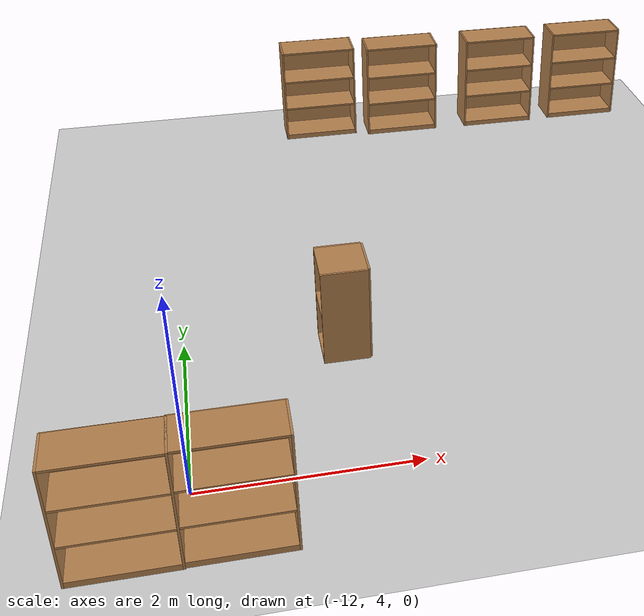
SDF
<sdf version="1.7">
 <world name="default">
  <model name="ground_plane">
   <static>1</static>
   <link name="link">
    <collision name="collision">
     <geometry><plane><normal>0 0 1</normal><size>100 100</size></plane></geometry>
     <surface>
      <contact><collide_bitmask>65535</collide_bitmask></contact>
      <friction><ode><mu>100</mu><mu2>50</mu2></ode></friction>
     </surface>
    </collision>
    <visual name="visual">
     <cast_shadows>0</cast_shadows>
     <geometry><plane><normal>0 0 1</normal><size>100 100</size></plane></geometry>
     <material>
      <script><uri>file://media/materials/scripts/gazebo.material</uri><name>Gazebo/Grey</name></script>
     </material>
    </visual>
   </link>
  </model>
  <model name="bookshelf">
   <static>1</static>
   <link name="link">
    <inertial><mass>1</mass></inertial>
    <collision name="back">
     <pose>0 0.005 0.6 0 -0 0</pose>
     <geometry><box><size>0.9 0.01 1.2</size></box></geometry>
    </collision>
    <visual name="visual1">
     <pose>0 0.005 0.6 0 -0 0</pose>
     <geometry><box><size>0.9 0.01 1.2</size></box></geometry>
     <material>
      <script><uri>file://media/materials/scripts/gazebo.material</uri><name>Gazebo/Wood</name></script>
     </material>
    </visual>
    <collision name="left_side">
     <pose>0.45 -0.195 0.6 0 -0 0</pose>
     <geometry><box><size>0.02 0.4 1.2</size></box></geometry>
    </collision>
    <visual name="visual2">
     <pose>0.45 -0.195 0.6 0 -0 0</pose>
     <geometry><box><size>0.02 0.4 1.2</size></box></geometry>
     <material>
      <script><uri>file://media/materials/scripts/gazebo.material</uri><name>Gazebo/Wood</name></script>
     </material>
    </visual>
    <collision name="right_side">
     <pose>-0.45 -0.195 0.6 0 -0 0</pose>
     <geometry><box><size>0.02 0.4 1.2</size></box></geometry>
    </collision>
    <visual name="visual3">
     <pose>-0.45 -0.195 0.6 0 -0 0</pose>
     <geometry><box><size>0.02 0.4 1.2</size></box></geometry>
     <material>
      <script><uri>file://media/materials/scripts/gazebo.material</uri><name>Gazebo/Wood</name></script>
     </material>
    </visual>
    <collision name="bottom">
     <pose>0 -0.195 0.03 0 -0 0</pose>
     <geometry><box><size>0.88 0.4 0.06</size></box></geometry>
    </collision>
    <visual name="visual4">
     <pose>0 -0.195 0.03 0 -0 0</pose>
     <geometry><box><size>0.88 0.4 0.06</size></box></geometry>
     <material>
      <script><uri>file://media/materials/scripts/gazebo.material</uri><name>Gazebo/Wood</name></script>
     </material>
    </visual>
    <collision name="top">
     <pose>0 -0.195 1.19 0 -0 0</pose>
     <geometry><box><size>0.88 0.4 0.02</size></box></geometry>
    </collision>
    <visual name="visual5">
     <pose>0 -0.195 1.19 0 -0 0</pose>
     <geometry><box><size>0.88 0.4 0.02</size></box></geometry>
     <material>
      <script><uri>file://media/materials/scripts/gazebo.material</uri><name>Gazebo/Wood</name></script>
     </material>
    </visual>
    <collision name="low_shelf">
     <pose>0 -0.195 0.43 0 -0 0</pose>
     <geometry><box><size>0.88 0.4 0.02</size></box></geometry>
    </collision>
    <visual name="visual6">
     <pose>0 -0.195 0.43 0 -0 0</pose>
     <geometry><box><size>0.88 0.4 0.02</size></box></geometry>
     <material>
      <script><uri>file://media/materials/scripts/gazebo.material</uri><name>Gazebo/Wood</name></script>
     </material>
    </visual>
    <collision name="high_shelf">
     <pose>0 -0.195 0.8 0 -0 0</pose>
     <geometry><box><size>0.88 0.4 0.02</size></box></geometry>
    </collision>
    <visual name="visual7">
     <pose>0 -0.195 0.8 0 -0 0</pose>
     <geometry><box><size>0.88 0.4 0.02</size></box></geometry>
     <material>
      <script><uri>file://media/materials/scripts/gazebo.material</uri><name>Gazebo/Wood</name></script>
     </material>
    </visual>
   </link>
   <pose>-10.0788 10.5753 0 0 -0 0</pose>
  </model>
  <model name="bookshelf_0">
   <static>1</static>
   <link name="link">
    <inertial><mass>1</mass></inertial>
    <collision name="back">
     <pose>0 0.005 0.6 0 -0 0</pose>
     <geometry><box><size>0.9 0.01 1.2</size></box></geometry>
    </collision>
    <visual name="visual1">
     <pose>0 0.005 0.6 0 -0 0</pose>
     <geometry><box><size>0.9 0.01 1.2</size></box></geometry>
     <material>
      <script><uri>file://media/materials/scripts/gazebo.material</uri><name>Gazebo/Wood</name></script>
     </material>
    </visual>
    <collision name="left_side">
     <pose>0.45 -0.195 0.6 0 -0 0</pose>
     <geometry><box><size>0.02 0.4 1.2</size></box></geometry>
    </collision>
    <visual name="visual2">
     <pose>0.45 -0.195 0.6 0 -0 0</pose>
     <geometry><box><size>0.02 0.4 1.2</size></box></geometry>
     <material>
      <script><uri>file://media/materials/scripts/gazebo.material</uri><name>Gazebo/Wood</name></script>
     </material>
    </visual>
    <collision name="right_side">
     <pose>-0.45 -0.195 0.6 0 -0 0</pose>
     <geometry><box><size>0.02 0.4 1.2</size></box></geometry>
    </collision>
    <visual name="visual3">
     <pose>-0.45 -0.195 0.6 0 -0 0</pose>
     <geometry><box><size>0.02 0.4 1.2</size></box></geometry>
     <material>
      <script><uri>file://media/materials/scripts/gazebo.material</uri><name>Gazebo/Wood</name></script>
     </material>
    </visual>
    <collision name="bottom">
     <pose>0 -0.195 0.03 0 -0 0</pose>
     <geometry><box><size>0.88 0.4 0.06</size></box></geometry>
    </collision>
    <visual name="visual4">
     <pose>0 -0.195 0.03 0 -0 0</pose>
     <geometry><box><size>0.88 0.4 0.06</size></box></geometry>
     <material>
      <script><uri>file://media/materials/scripts/gazebo.material</uri><name>Gazebo/Wood</name></script>
     </material>
    </visual>
    <collision name="top">
     <pose>0 -0.195 1.19 0 -0 0</pose>
     <geometry><box><size>0.88 0.4 0.02</size></box></geometry>
    </collision>
    <visual name="visual5">
     <pose>0 -0.195 1.19 0 -0 0</pose>
     <geometry><box><size>0.88 0.4 0.02</size></box></geometry>
     <material>
      <script><uri>file://media/materials/scripts/gazebo.material</uri><name>Gazebo/Wood</name></script>
     </material>
    </visual>
    <collision name="low_shelf">
     <pose>0 -0.195 0.43 0 -0 0</pose>
     <geometry><box><size>0.88 0.4 0.02</size></box></geometry>
    </collision>
    <visual name="visual6">
     <pose>0 -0.195 0.43 0 -0 0</pose>
     <geometry><box><size>0.88 0.4 0.02</size></box></geometry>
     <material>
      <script><uri>file://media/materials/scripts/gazebo.material</uri><name>Gazebo/Wood</name></script>
     </material>
    </visual>
    <collision name="high_shelf">
     <pose>0 -0.195 0.8 0 -0 0</pose>
     <geometry><box><size>0.88 0.4 0.02</size></box></geometry>
    </collision>
    <visual name="visual7">
     <pose>0 -0.195 0.8 0 -0 0</pose>
     <geometry><box><size>0.88 0.4 0.02</size></box></geometry>
     <material>
      <script><uri>file://media/materials/scripts/gazebo.material</uri><name>Gazebo/Wood</name></script>
     </material>
    </visual>
   </link>
   <pose>-9.01072 10.5031 0 0 -0 0</pose>
  </model>
  <model name="bookshelf_1">
   <static>1</static>
   <link name="link">
    <inertial><mass>1</mass></inertial>
    <collision name="back">
     <pose>0 0.005 0.6 0 -0 0</pose>
     <geometry><box><size>0.9 0.01 1.2</size></box></geometry>
    </collision>
    <visual name="visual1">
     <pose>0 0.005 0.6 0 -0 0</pose>
     <geometry><box><size>0.9 0.01 1.2</size></box></geometry>
     <material>
      <script><uri>file://media/materials/scripts/gazebo.material</uri><name>Gazebo/Wood</name></script>
     </material>
    </visual>
    <collision name="left_side">
     <pose>0.45 -0.195 0.6 0 -0 0</pose>
     <geometry><box><size>0.02 0.4 1.2</size></box></geometry>
    </collision>
    <visual name="visual2">
     <pose>0.45 -0.195 0.6 0 -0 0</pose>
     <geometry><box><size>0.02 0.4 1.2</size></box></geometry>
     <material>
      <script><uri>file://media/materials/scripts/gazebo.material</uri><name>Gazebo/Wood</name></script>
     </material>
    </visual>
    <collision name="right_side">
     <pose>-0.45 -0.195 0.6 0 -0 0</pose>
     <geometry><box><size>0.02 0.4 1.2</size></box></geometry>
    </collision>
    <visual name="visual3">
     <pose>-0.45 -0.195 0.6 0 -0 0</pose>
     <geometry><box><size>0.02 0.4 1.2</size></box></geometry>
     <material>
      <script><uri>file://media/materials/scripts/gazebo.material</uri><name>Gazebo/Wood</name></script>
     </material>
    </visual>
    <collision name="bottom">
     <pose>0 -0.195 0.03 0 -0 0</pose>
     <geometry><box><size>0.88 0.4 0.06</size></box></geometry>
    </collision>
    <visual name="visual4">
     <pose>0 -0.195 0.03 0 -0 0</pose>
     <geometry><box><size>0.88 0.4 0.06</size></box></geometry>
     <material>
      <script><uri>file://media/materials/scripts/gazebo.material</uri><name>Gazebo/Wood</name></script>
     </material>
    </visual>
    <collision name="top">
     <pose>0 -0.195 1.19 0 -0 0</pose>
     <geometry><box><size>0.88 0.4 0.02</size></box></geometry>
    </collision>
    <visual name="visual5">
     <pose>0 -0.195 1.19 0 -0 0</pose>
     <geometry><box><size>0.88 0.4 0.02</size></box></geometry>
     <material>
      <script><uri>file://media/materials/scripts/gazebo.material</uri><name>Gazebo/Wood</name></script>
     </material>
    </visual>
    <collision name="low_shelf">
     <pose>0 -0.195 0.43 0 -0 0</pose>
     <geometry><box><size>0.88 0.4 0.02</size></box></geometry>
    </collision>
    <visual name="visual6">
     <pose>0 -0.195 0.43 0 -0 0</pose>
     <geometry><box><size>0.88 0.4 0.02</size></box></geometry>
     <material>
      <script><uri>file://media/materials/scripts/gazebo.material</uri><name>Gazebo/Wood</name></script>
     </material>
    </visual>
    <collision name="high_shelf">
     <pose>0 -0.195 0.8 0 -0 0</pose>
     <geometry><box><size>0.88 0.4 0.02</size></box></geometry>
    </collision>
    <visual name="visual7">
     <pose>0 -0.195 0.8 0 -0 0</pose>
     <geometry><box><size>0.88 0.4 0.02</size></box></geometry>
     <material>
      <script><uri>file://media/materials/scripts/gazebo.material</uri><name>Gazebo/Wood</name></script>
     </material>
    </visual>
   </link>
   <pose>-7.70566 10.4883 0 0 -0 0</pose>
  </model>
  <model name="bookshelf_2">
   <static>1</static>
   <link name="link">
    <inertial><mass>1</mass></inertial>
    <collision name="back">
     <pose>0 0.005 0.6 0 -0 0</pose>
     <geometry><box><size>0.9 0.01 1.2</size></box></geometry>
    </collision>
    <visual name="visual1">
     <pose>0 0.005 0.6 0 -0 0</pose>
     <geometry><box><size>0.9 0.01 1.2</size></box></geometry>
     <material>
      <script><uri>file://media/materials/scripts/gazebo.material</uri><name>Gazebo/Wood</name></script>
     </material>
    </visual>
    <collision name="left_side">
     <pose>0.45 -0.195 0.6 0 -0 0</pose>
     <geometry><box><size>0.02 0.4 1.2</size></box></geometry>
    </collision>
    <visual name="visual2">
     <pose>0.45 -0.195 0.6 0 -0 0</pose>
     <geometry><box><size>0.02 0.4 1.2</size></box></geometry>
     <material>
      <script><uri>file://media/materials/scripts/gazebo.material</uri><name>Gazebo/Wood</name></script>
     </material>
    </visual>
    <collision name="right_side">
     <pose>-0.45 -0.195 0.6 0 -0 0</pose>
     <geometry><box><size>0.02 0.4 1.2</size></box></geometry>
    </collision>
    <visual name="visual3">
     <pose>-0.45 -0.195 0.6 0 -0 0</pose>
     <geometry><box><size>0.02 0.4 1.2</size></box></geometry>
     <material>
      <script><uri>file://media/materials/scripts/gazebo.material</uri><name>Gazebo/Wood</name></script>
     </material>
    </visual>
    <collision name="bottom">
     <pose>0 -0.195 0.03 0 -0 0</pose>
     <geometry><box><size>0.88 0.4 0.06</size></box></geometry>
    </collision>
    <visual name="visual4">
     <pose>0 -0.195 0.03 0 -0 0</pose>
     <geometry><box><size>0.88 0.4 0.06</size></box></geometry>
     <material>
      <script><uri>file://media/materials/scripts/gazebo.material</uri><name>Gazebo/Wood</name></script>
     </material>
    </visual>
    <collision name="top">
     <pose>0 -0.195 1.19 0 -0 0</pose>
     <geometry><box><size>0.88 0.4 0.02</size></box></geometry>
    </collision>
    <visual name="visual5">
     <pose>0 -0.195 1.19 0 -0 0</pose>
     <geometry><box><size>0.88 0.4 0.02</size></box></geometry>
     <material>
      <script><uri>file://media/materials/scripts/gazebo.material</uri><name>Gazebo/Wood</name></script>
     </material>
    </visual>
    <collision name="low_shelf">
     <pose>0 -0.195 0.43 0 -0 0</pose>
     <geometry><box><size>0.88 0.4 0.02</size></box></geometry>
    </collision>
    <visual name="visual6">
     <pose>0 -0.195 0.43 0 -0 0</pose>
     <geometry><box><size>0.88 0.4 0.02</size></box></geometry>
     <material>
      <script><uri>file://media/materials/scripts/gazebo.material</uri><name>Gazebo/Wood</name></script>
     </material>
    </visual>
    <collision name="high_shelf">
     <pose>0 -0.195 0.8 0 -0 0</pose>
     <geometry><box><size>0.88 0.4 0.02</size></box></geometry>
    </collision>
    <visual name="visual7">
     <pose>0 -0.195 0.8 0 -0 0</pose>
     <geometry><box><size>0.88 0.4 0.02</size></box></geometry>
     <material>
      <script><uri>file://media/materials/scripts/gazebo.material</uri><name>Gazebo/Wood</name></script>
     </material>
    </visual>
   </link>
   <pose>-6.53518 10.5005 0 0 -0 0</pose>
  </model>
  <model name="cabinet">
   <static>1</static>
   <link name="cabinet_bottom_plate">
    <inertial>
     <pose>0 0 -1 0 -0 0</pose>
     <inertia><ixx>2.05</ixx><ixy>0</ixy><ixz>0</ixz><iyy>2.05</iyy><iyz>0</iyz><izz>2.05</izz></inertia>
     <mass>25</mass>
    </inertial>
    <collision name="cabinet_bottom_plate_geom">
     <pose>0 0 0.01 0 -0 0</pose>
     <geometry><box><size>0.45 0.45 0.02</size></box></geometry>
    </collision>
    <visual name="cabinet_bottom_plate_geom_visual">
     <pose>0 0 0.01 0 -0 0</pose>
     <geometry><box><size>0.45 0.45 0.02</size></box></geometry>
     <material>
      <script><uri>file://media/materials/scripts/gazebo.material</uri><name>Gazebo/Wood</name></script>
     </material>
    </visual>
    <collision name="cabinet_bottom_plate_geom_cabinet_back_plate">
     <pose>0.235 0 0.51 0 -0 0</pose>
     <geometry><box><size>0.02 0.45 1.02</size></box></geometry>
    </collision>
    <visual name="cabinet_bottom_plate_geom_cabinet_back_plate_visual">
     <pose>0.235 0 0.51 0 -0 0</pose>
     <geometry><box><size>0.02 0.45 1.02</size></box></geometry>
     <material>
      <script><uri>file://media/materials/scripts/gazebo.material</uri><name>Gazebo/Wood</name></script>
     </material>
    </visual>
    <collision name="cabinet_bottom_plate_geom_cabinet_left_plate">
     <pose>0 0.235 0.51 0 -0 0</pose>
     <geometry><box><size>0.45 0.02 1.02</size></box></geometry>
    </collision>
    <visual name="cabinet_bottom_plate_geom_cabinet_left_plate_visual">
     <pose>0 0.235 0.51 0 -0 0</pose>
     <geometry><box><size>0.45 0.02 1.02</size></box></geometry>
     <material>
      <script><uri>file://media/materials/scripts/gazebo.material</uri><name>Gazebo/Wood</name></script>
     </material>
    </visual>
    <collision name="cabinet_bottom_plate_geom_cabinet_middle_plate">
     <pose>0 0 0.51 0 -0 0</pose>
     <geometry><box><size>0.45 0.45 0.02</size></box></geometry>
    </collision>
    <visual name="cabinet_bottom_plate_geom_cabinet_middle_plate_visual">
     <pose>0 0 0.51 0 -0 0</pose>
     <geometry><box><size>0.45 0.45 0.02</size></box></geometry>
     <material>
      <script><uri>file://media/materials/scripts/gazebo.material</uri><name>Gazebo/Wood</name></script>
     </material>
    </visual>
    <collision name="cabinet_bottom_plate_geom_cabinet_right_plate">
     <pose>0 -0.235 0.51 0 -0 0</pose>
     <geometry><box><size>0.45 0.02 1.02</size></box></geometry>
    </collision>
    <visual name="cabinet_bottom_plate_geom_cabinet_right_plate_visual">
     <pose>0 -0.235 0.51 0 -0 0</pose>
     <geometry><box><size>0.45 0.02 1.02</size></box></geometry>
     <material>
      <script><uri>file://media/materials/scripts/gazebo.material</uri><name>Gazebo/Wood</name></script>
     </material>
    </visual>
    <collision name="cabinet_bottom_plate_geom_cabinet_top_plate">
     <pose>0 0 1.01 0 -0 0</pose>
     <geometry><box><size>0.45 0.45 0.02</size></box></geometry>
    </collision>
    <visual name="cabinet_bottom_plate_geom_cabinet_top_plate_visual">
     <pose>0 0 1.01 0 -0 0</pose>
     <geometry><box><size>0.45 0.45 0.02</size></box></geometry>
     <material>
      <script><uri>file://media/materials/scripts/gazebo.material</uri><name>Gazebo/Wood</name></script>
     </material>
    </visual>
   </link>
   <pose>-10.4654 5.70058 0 0 -0 0</pose>
  </model>
  <model name="bookshelf_7">
   <static>1</static>
   <link name="link">
    <inertial><mass>1</mass></inertial>
    <collision name="back">
     <pose>0 0.005 0.6 0 -0 0</pose>
     <geometry><box><size>0.9 0.01 1.2</size></box></geometry>
    </collision>
    <visual name="visual1">
     <pose>0 0.005 0.6 0 -0 0</pose>
     <geometry><box><size>0.9 0.01 1.2</size></box></geometry>
     <material>
      <script><uri>file://media/materials/scripts/gazebo.material</uri><name>Gazebo/Wood</name></script>
     </material>
    </visual>
    <collision name="left_side">
     <pose>0.45 -0.195 0.6 0 -0 0</pose>
     <geometry><box><size>0.02 0.4 1.2</size></box></geometry>
    </collision>
    <visual name="visual2">
     <pose>0.45 -0.195 0.6 0 -0 0</pose>
     <geometry><box><size>0.02 0.4 1.2</size></box></geometry>
     <material>
      <script><uri>file://media/materials/scripts/gazebo.material</uri><name>Gazebo/Wood</name></script>
     </material>
    </visual>
    <collision name="right_side">
     <pose>-0.45 -0.195 0.6 0 -0 0</pose>
     <geometry><box><size>0.02 0.4 1.2</size></box></geometry>
    </collision>
    <visual name="visual3">
     <pose>-0.45 -0.195 0.6 0 -0 0</pose>
     <geometry><box><size>0.02 0.4 1.2</size></box></geometry>
     <material>
      <script><uri>file://media/materials/scripts/gazebo.material</uri><name>Gazebo/Wood</name></script>
     </material>
    </visual>
    <collision name="bottom">
     <pose>0 -0.195 0.03 0 -0 0</pose>
     <geometry><box><size>0.88 0.4 0.06</size></box></geometry>
    </collision>
    <visual name="visual4">
     <pose>0 -0.195 0.03 0 -0 0</pose>
     <geometry><box><size>0.88 0.4 0.06</size></box></geometry>
     <material>
      <script><uri>file://media/materials/scripts/gazebo.material</uri><name>Gazebo/Wood</name></script>
     </material>
    </visual>
    <collision name="top">
     <pose>0 -0.195 1.19 0 -0 0</pose>
     <geometry><box><size>0.88 0.4 0.02</size></box></geometry>
    </collision>
    <visual name="visual5">
     <pose>0 -0.195 1.19 0 -0 0</pose>
     <geometry><box><size>0.88 0.4 0.02</size></box></geometry>
     <material>
      <script><uri>file://media/materials/scripts/gazebo.material</uri><name>Gazebo/Wood</name></script>
     </material>
    </visual>
    <collision name="low_shelf">
     <pose>0 -0.195 0.43 0 -0 0</pose>
     <geometry><box><size>0.88 0.4 0.02</size></box></geometry>
    </collision>
    <visual name="visual6">
     <pose>0 -0.195 0.43 0 -0 0</pose>
     <geometry><box><size>0.88 0.4 0.02</size></box></geometry>
     <material>
      <script><uri>file://media/materials/scripts/gazebo.material</uri><name>Gazebo/Wood</name></script>
     </material>
    </visual>
    <collision name="high_shelf">
     <pose>0 -0.195 0.8 0 -0 0</pose>
     <geometry><box><size>0.88 0.4 0.02</size></box></geometry>
    </collision>
    <visual name="visual7">
     <pose>0 -0.195 0.8 0 -0 0</pose>
     <geometry><box><size>0.88 0.4 0.02</size></box></geometry>
     <material>
      <script><uri>file://media/materials/scripts/gazebo.material</uri><name>Gazebo/Wood</name></script>
     </material>
    </visual>
   </link>
   <pose>-11.6248 3.61785 0 0 -0 0</pose>
  </model>
  <model name="bookshelf_8">
   <static>1</static>
   <link name="link">
    <inertial><mass>1</mass></inertial>
    <collision name="back">
     <pose>0 0.005 0.6 0 -0 0</pose>
     <geometry><box><size>0.9 0.01 1.2</size></box></geometry>
    </collision>
    <visual name="visual1">
     <pose>0 0.005 0.6 0 -0 0</pose>
     <geometry><box><size>0.9 0.01 1.2</size></box></geometry>
     <material>
      <script><uri>file://media/materials/scripts/gazebo.material</uri><name>Gazebo/Wood</name></script>
     </material>
    </visual>
    <collision name="left_side">
     <pose>0.45 -0.195 0.6 0 -0 0</pose>
     <geometry><box><size>0.02 0.4 1.2</size></box></geometry>
    </collision>
    <visual name="visual2">
     <pose>0.45 -0.195 0.6 0 -0 0</pose>
     <geometry><box><size>0.02 0.4 1.2</size></box></geometry>
     <material>
      <script><uri>file://media/materials/scripts/gazebo.material</uri><name>Gazebo/Wood</name></script>
     </material>
    </visual>
    <collision name="right_side">
     <pose>-0.45 -0.195 0.6 0 -0 0</pose>
     <geometry><box><size>0.02 0.4 1.2</size></box></geometry>
    </collision>
    <visual name="visual3">
     <pose>-0.45 -0.195 0.6 0 -0 0</pose>
     <geometry><box><size>0.02 0.4 1.2</size></box></geometry>
     <material>
      <script><uri>file://media/materials/scripts/gazebo.material</uri><name>Gazebo/Wood</name></script>
     </material>
    </visual>
    <collision name="bottom">
     <pose>0 -0.195 0.03 0 -0 0</pose>
     <geometry><box><size>0.88 0.4 0.06</size></box></geometry>
    </collision>
    <visual name="visual4">
     <pose>0 -0.195 0.03 0 -0 0</pose>
     <geometry><box><size>0.88 0.4 0.06</size></box></geometry>
     <material>
      <script><uri>file://media/materials/scripts/gazebo.material</uri><name>Gazebo/Wood</name></script>
     </material>
    </visual>
    <collision name="top">
     <pose>0 -0.195 1.19 0 -0 0</pose>
     <geometry><box><size>0.88 0.4 0.02</size></box></geometry>
    </collision>
    <visual name="visual5">
     <pose>0 -0.195 1.19 0 -0 0</pose>
     <geometry><box><size>0.88 0.4 0.02</size></box></geometry>
     <material>
      <script><uri>file://media/materials/scripts/gazebo.material</uri><name>Gazebo/Wood</name></script>
     </material>
    </visual>
    <collision name="low_shelf">
     <pose>0 -0.195 0.43 0 -0 0</pose>
     <geometry><box><size>0.88 0.4 0.02</size></box></geometry>
    </collision>
    <visual name="visual6">
     <pose>0 -0.195 0.43 0 -0 0</pose>
     <geometry><box><size>0.88 0.4 0.02</size></box></geometry>
     <material>
      <script><uri>file://media/materials/scripts/gazebo.material</uri><name>Gazebo/Wood</name></script>
     </material>
    </visual>
    <collision name="high_shelf">
     <pose>0 -0.195 0.8 0 -0 0</pose>
     <geometry><box><size>0.88 0.4 0.02</size></box></geometry>
    </collision>
    <visual name="visual7">
     <pose>0 -0.195 0.8 0 -0 0</pose>
     <geometry><box><size>0.88 0.4 0.02</size></box></geometry>
     <material>
      <script><uri>file://media/materials/scripts/gazebo.material</uri><name>Gazebo/Wood</name></script>
     </material>
    </visual>
   </link>
   <pose>-12.5231 3.60734 0 0 -0 0</pose>
  </model>
 </world>
</sdf>
